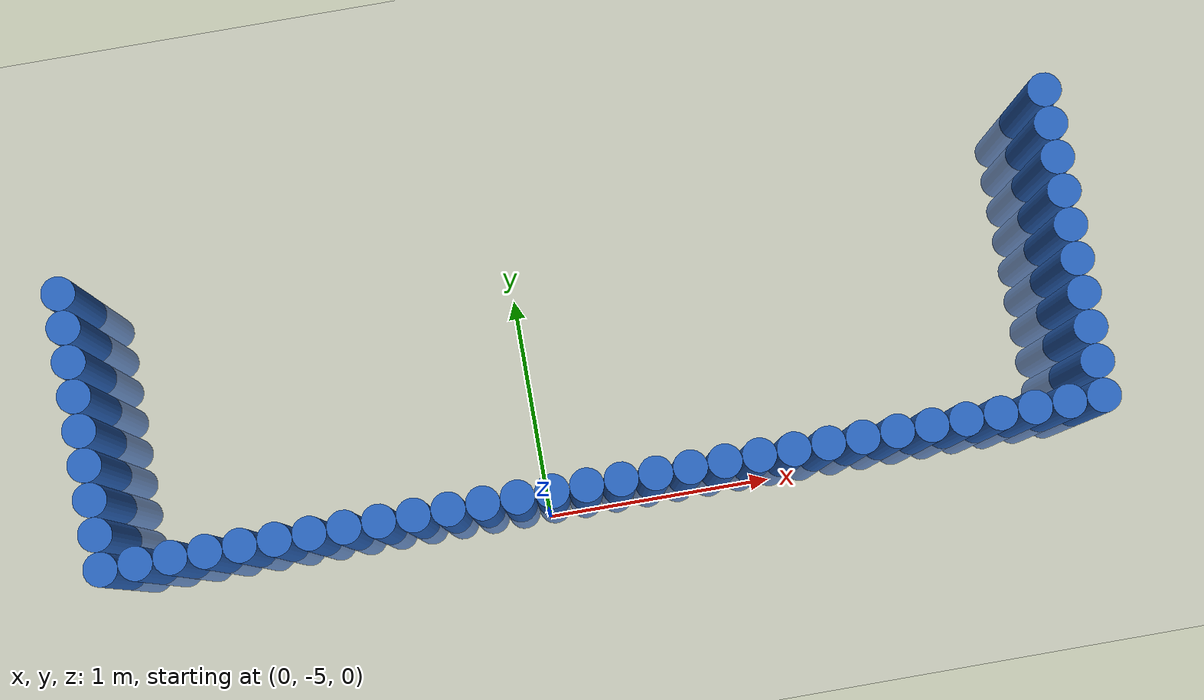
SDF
<sdf version="1.6">
 <world name="default">
  <model name="ground_plane">
   <static>1</static>
   <link name="link">
    <collision name="collision">
     <geometry><plane><normal>0 0 1</normal><size>100 100</size></plane></geometry>
     <surface><friction><ode><mu>100</mu><mu2>50</mu2></ode></friction></surface>
    </collision>
    <visual name="visual">
     <cast_shadows>0</cast_shadows>
     <geometry><plane><normal>0 0 1</normal><size>100 100</size></plane></geometry>
     <material>
      <script><uri>file://media/materials/scripts/gazebo.material</uri><name>Gazebo/Grey</name></script>
     </material>
    </visual>
   </link>
  </model>
  <model name="unit_cylinder_0">
   <static>1</static>
   <pose>2.425000 -4.925000 0.000000 0.000000 0.000000 0.000000</pose>
   <link name="link">
    <inertial>
     <mass>1</mass>
     <inertia><ixx>0.145833</ixx><ixy>0</ixy><ixz>0</ixz><iyy>0.145833</iyy><iyz>0</iyz><izz>0.125</izz></inertia>
    </inertial>
    <collision name="collision">
     <geometry><cylinder><radius>0.075000</radius><length>1.5</length></cylinder></geometry>
    </collision>
    <visual name="visual">
     <geometry><cylinder><radius>0.075000</radius><length>1.5</length></cylinder></geometry>
     <material>
      <ambient>0.152000 0.379000 0.720000 1</ambient>
      <diffuse>0.152000 0.379000 0.720000 1</diffuse>
     </material>
     <material>
      <script><name>Gazebo/Grey</name><uri>file://media/materials/scripts/gazebo.material</uri></script>
     </material>
    </visual>
   </link>
  </model>
  <model name="unit_cylinder_1">
   <static>1</static>
   <pose>2.275000 -4.925000 0.000000 0.000000 0.000000 0.000000</pose>
   <link name="link">
    <inertial>
     <mass>1</mass>
     <inertia><ixx>0.145833</ixx><ixy>0</ixy><ixz>0</ixz><iyy>0.145833</iyy><iyz>0</iyz><izz>0.125</izz></inertia>
    </inertial>
    <collision name="collision">
     <geometry><cylinder><radius>0.075000</radius><length>1.5</length></cylinder></geometry>
    </collision>
    <visual name="visual">
     <geometry><cylinder><radius>0.075000</radius><length>1.5</length></cylinder></geometry>
     <material>
      <ambient>0.152000 0.379000 0.720000 1</ambient>
      <diffuse>0.152000 0.379000 0.720000 1</diffuse>
     </material>
     <material>
      <script><name>Gazebo/Grey</name><uri>file://media/materials/scripts/gazebo.material</uri></script>
     </material>
    </visual>
   </link>
  </model>
  <model name="unit_cylinder_2">
   <static>1</static>
   <pose>2.125000 -4.925000 0.000000 0.000000 0.000000 0.000000</pose>
   <link name="link">
    <inertial>
     <mass>1</mass>
     <inertia><ixx>0.145833</ixx><ixy>0</ixy><ixz>0</ixz><iyy>0.145833</iyy><iyz>0</iyz><izz>0.125</izz></inertia>
    </inertial>
    <collision name="collision">
     <geometry><cylinder><radius>0.075000</radius><length>1.5</length></cylinder></geometry>
    </collision>
    <visual name="visual">
     <geometry><cylinder><radius>0.075000</radius><length>1.5</length></cylinder></geometry>
     <material>
      <ambient>0.152000 0.379000 0.720000 1</ambient>
      <diffuse>0.152000 0.379000 0.720000 1</diffuse>
     </material>
     <material>
      <script><name>Gazebo/Grey</name><uri>file://media/materials/scripts/gazebo.material</uri></script>
     </material>
    </visual>
   </link>
  </model>
  <model name="unit_cylinder_3">
   <static>1</static>
   <pose>1.975000 -4.925000 0.000000 0.000000 0.000000 0.000000</pose>
   <link name="link">
    <inertial>
     <mass>1</mass>
     <inertia><ixx>0.145833</ixx><ixy>0</ixy><ixz>0</ixz><iyy>0.145833</iyy><iyz>0</iyz><izz>0.125</izz></inertia>
    </inertial>
    <collision name="collision">
     <geometry><cylinder><radius>0.075000</radius><length>1.5</length></cylinder></geometry>
    </collision>
    <visual name="visual">
     <geometry><cylinder><radius>0.075000</radius><length>1.5</length></cylinder></geometry>
     <material>
      <ambient>0.152000 0.379000 0.720000 1</ambient>
      <diffuse>0.152000 0.379000 0.720000 1</diffuse>
     </material>
     <material>
      <script><name>Gazebo/Grey</name><uri>file://media/materials/scripts/gazebo.material</uri></script>
     </material>
    </visual>
   </link>
  </model>
  <model name="unit_cylinder_4">
   <static>1</static>
   <pose>1.825000 -4.925000 0.000000 0.000000 0.000000 0.000000</pose>
   <link name="link">
    <inertial>
     <mass>1</mass>
     <inertia><ixx>0.145833</ixx><ixy>0</ixy><ixz>0</ixz><iyy>0.145833</iyy><iyz>0</iyz><izz>0.125</izz></inertia>
    </inertial>
    <collision name="collision">
     <geometry><cylinder><radius>0.075000</radius><length>1.5</length></cylinder></geometry>
    </collision>
    <visual name="visual">
     <geometry><cylinder><radius>0.075000</radius><length>1.5</length></cylinder></geometry>
     <material>
      <ambient>0.152000 0.379000 0.720000 1</ambient>
      <diffuse>0.152000 0.379000 0.720000 1</diffuse>
     </material>
     <material>
      <script><name>Gazebo/Grey</name><uri>file://media/materials/scripts/gazebo.material</uri></script>
     </material>
    </visual>
   </link>
  </model>
  <model name="unit_cylinder_5">
   <static>1</static>
   <pose>1.675000 -4.925000 0.000000 0.000000 0.000000 0.000000</pose>
   <link name="link">
    <inertial>
     <mass>1</mass>
     <inertia><ixx>0.145833</ixx><ixy>0</ixy><ixz>0</ixz><iyy>0.145833</iyy><iyz>0</iyz><izz>0.125</izz></inertia>
    </inertial>
    <collision name="collision">
     <geometry><cylinder><radius>0.075000</radius><length>1.5</length></cylinder></geometry>
    </collision>
    <visual name="visual">
     <geometry><cylinder><radius>0.075000</radius><length>1.5</length></cylinder></geometry>
     <material>
      <ambient>0.152000 0.379000 0.720000 1</ambient>
      <diffuse>0.152000 0.379000 0.720000 1</diffuse>
     </material>
     <material>
      <script><name>Gazebo/Grey</name><uri>file://media/materials/scripts/gazebo.material</uri></script>
     </material>
    </visual>
   </link>
  </model>
  <model name="unit_cylinder_6">
   <static>1</static>
   <pose>1.525000 -4.925000 0.000000 0.000000 0.000000 0.000000</pose>
   <link name="link">
    <inertial>
     <mass>1</mass>
     <inertia><ixx>0.145833</ixx><ixy>0</ixy><ixz>0</ixz><iyy>0.145833</iyy><iyz>0</iyz><izz>0.125</izz></inertia>
    </inertial>
    <collision name="collision">
     <geometry><cylinder><radius>0.075000</radius><length>1.5</length></cylinder></geometry>
    </collision>
    <visual name="visual">
     <geometry><cylinder><radius>0.075000</radius><length>1.5</length></cylinder></geometry>
     <material>
      <ambient>0.152000 0.379000 0.720000 1</ambient>
      <diffuse>0.152000 0.379000 0.720000 1</diffuse>
     </material>
     <material>
      <script><name>Gazebo/Grey</name><uri>file://media/materials/scripts/gazebo.material</uri></script>
     </material>
    </visual>
   </link>
  </model>
  <model name="unit_cylinder_7">
   <static>1</static>
   <pose>1.375000 -4.925000 0.000000 0.000000 0.000000 0.000000</pose>
   <link name="link">
    <inertial>
     <mass>1</mass>
     <inertia><ixx>0.145833</ixx><ixy>0</ixy><ixz>0</ixz><iyy>0.145833</iyy><iyz>0</iyz><izz>0.125</izz></inertia>
    </inertial>
    <collision name="collision">
     <geometry><cylinder><radius>0.075000</radius><length>1.5</length></cylinder></geometry>
    </collision>
    <visual name="visual">
     <geometry><cylinder><radius>0.075000</radius><length>1.5</length></cylinder></geometry>
     <material>
      <ambient>0.152000 0.379000 0.720000 1</ambient>
      <diffuse>0.152000 0.379000 0.720000 1</diffuse>
     </material>
     <material>
      <script><name>Gazebo/Grey</name><uri>file://media/materials/scripts/gazebo.material</uri></script>
     </material>
    </visual>
   </link>
  </model>
  <model name="unit_cylinder_8">
   <static>1</static>
   <pose>1.225000 -4.925000 0.000000 0.000000 0.000000 0.000000</pose>
   <link name="link">
    <inertial>
     <mass>1</mass>
     <inertia><ixx>0.145833</ixx><ixy>0</ixy><ixz>0</ixz><iyy>0.145833</iyy><iyz>0</iyz><izz>0.125</izz></inertia>
    </inertial>
    <collision name="collision">
     <geometry><cylinder><radius>0.075000</radius><length>1.5</length></cylinder></geometry>
    </collision>
    <visual name="visual">
     <geometry><cylinder><radius>0.075000</radius><length>1.5</length></cylinder></geometry>
     <material>
      <ambient>0.152000 0.379000 0.720000 1</ambient>
      <diffuse>0.152000 0.379000 0.720000 1</diffuse>
     </material>
     <material>
      <script><name>Gazebo/Grey</name><uri>file://media/materials/scripts/gazebo.material</uri></script>
     </material>
    </visual>
   </link>
  </model>
  <model name="unit_cylinder_9">
   <static>1</static>
   <pose>1.075000 -4.925000 0.000000 0.000000 0.000000 0.000000</pose>
   <link name="link">
    <inertial>
     <mass>1</mass>
     <inertia><ixx>0.145833</ixx><ixy>0</ixy><ixz>0</ixz><iyy>0.145833</iyy><iyz>0</iyz><izz>0.125</izz></inertia>
    </inertial>
    <collision name="collision">
     <geometry><cylinder><radius>0.075000</radius><length>1.5</length></cylinder></geometry>
    </collision>
    <visual name="visual">
     <geometry><cylinder><radius>0.075000</radius><length>1.5</length></cylinder></geometry>
     <material>
      <ambient>0.152000 0.379000 0.720000 1</ambient>
      <diffuse>0.152000 0.379000 0.720000 1</diffuse>
     </material>
     <material>
      <script><name>Gazebo/Grey</name><uri>file://media/materials/scripts/gazebo.material</uri></script>
     </material>
    </visual>
   </link>
  </model>
  <model name="unit_cylinder_10">
   <static>1</static>
   <pose>0.925000 -4.925000 0.000000 0.000000 0.000000 0.000000</pose>
   <link name="link">
    <inertial>
     <mass>1</mass>
     <inertia><ixx>0.145833</ixx><ixy>0</ixy><ixz>0</ixz><iyy>0.145833</iyy><iyz>0</iyz><izz>0.125</izz></inertia>
    </inertial>
    <collision name="collision">
     <geometry><cylinder><radius>0.075000</radius><length>1.5</length></cylinder></geometry>
    </collision>
    <visual name="visual">
     <geometry><cylinder><radius>0.075000</radius><length>1.5</length></cylinder></geometry>
     <material>
      <ambient>0.152000 0.379000 0.720000 1</ambient>
      <diffuse>0.152000 0.379000 0.720000 1</diffuse>
     </material>
     <material>
      <script><name>Gazebo/Grey</name><uri>file://media/materials/scripts/gazebo.material</uri></script>
     </material>
    </visual>
   </link>
  </model>
  <model name="unit_cylinder_11">
   <static>1</static>
   <pose>0.775000 -4.925000 0.000000 0.000000 0.000000 0.000000</pose>
   <link name="link">
    <inertial>
     <mass>1</mass>
     <inertia><ixx>0.145833</ixx><ixy>0</ixy><ixz>0</ixz><iyy>0.145833</iyy><iyz>0</iyz><izz>0.125</izz></inertia>
    </inertial>
    <collision name="collision">
     <geometry><cylinder><radius>0.075000</radius><length>1.5</length></cylinder></geometry>
    </collision>
    <visual name="visual">
     <geometry><cylinder><radius>0.075000</radius><length>1.5</length></cylinder></geometry>
     <material>
      <ambient>0.152000 0.379000 0.720000 1</ambient>
      <diffuse>0.152000 0.379000 0.720000 1</diffuse>
     </material>
     <material>
      <script><name>Gazebo/Grey</name><uri>file://media/materials/scripts/gazebo.material</uri></script>
     </material>
    </visual>
   </link>
  </model>
  <model name="unit_cylinder_12">
   <static>1</static>
   <pose>0.625000 -4.925000 0.000000 0.000000 0.000000 0.000000</pose>
   <link name="link">
    <inertial>
     <mass>1</mass>
     <inertia><ixx>0.145833</ixx><ixy>0</ixy><ixz>0</ixz><iyy>0.145833</iyy><iyz>0</iyz><izz>0.125</izz></inertia>
    </inertial>
    <collision name="collision">
     <geometry><cylinder><radius>0.075000</radius><length>1.5</length></cylinder></geometry>
    </collision>
    <visual name="visual">
     <geometry><cylinder><radius>0.075000</radius><length>1.5</length></cylinder></geometry>
     <material>
      <ambient>0.152000 0.379000 0.720000 1</ambient>
      <diffuse>0.152000 0.379000 0.720000 1</diffuse>
     </material>
     <material>
      <script><name>Gazebo/Grey</name><uri>file://media/materials/scripts/gazebo.material</uri></script>
     </material>
    </visual>
   </link>
  </model>
  <model name="unit_cylinder_13">
   <static>1</static>
   <pose>0.475000 -4.925000 0.000000 0.000000 0.000000 0.000000</pose>
   <link name="link">
    <inertial>
     <mass>1</mass>
     <inertia><ixx>0.145833</ixx><ixy>0</ixy><ixz>0</ixz><iyy>0.145833</iyy><iyz>0</iyz><izz>0.125</izz></inertia>
    </inertial>
    <collision name="collision">
     <geometry><cylinder><radius>0.075000</radius><length>1.5</length></cylinder></geometry>
    </collision>
    <visual name="visual">
     <geometry><cylinder><radius>0.075000</radius><length>1.5</length></cylinder></geometry>
     <material>
      <ambient>0.152000 0.379000 0.720000 1</ambient>
      <diffuse>0.152000 0.379000 0.720000 1</diffuse>
     </material>
     <material>
      <script><name>Gazebo/Grey</name><uri>file://media/materials/scripts/gazebo.material</uri></script>
     </material>
    </visual>
   </link>
  </model>
  <model name="unit_cylinder_14">
   <static>1</static>
   <pose>0.325000 -4.925000 0.000000 0.000000 0.000000 0.000000</pose>
   <link name="link">
    <inertial>
     <mass>1</mass>
     <inertia><ixx>0.145833</ixx><ixy>0</ixy><ixz>0</ixz><iyy>0.145833</iyy><iyz>0</iyz><izz>0.125</izz></inertia>
    </inertial>
    <collision name="collision">
     <geometry><cylinder><radius>0.075000</radius><length>1.5</length></cylinder></geometry>
    </collision>
    <visual name="visual">
     <geometry><cylinder><radius>0.075000</radius><length>1.5</length></cylinder></geometry>
     <material>
      <ambient>0.152000 0.379000 0.720000 1</ambient>
      <diffuse>0.152000 0.379000 0.720000 1</diffuse>
     </material>
     <material>
      <script><name>Gazebo/Grey</name><uri>file://media/materials/scripts/gazebo.material</uri></script>
     </material>
    </visual>
   </link>
  </model>
  <model name="unit_cylinder_15">
   <static>1</static>
   <pose>0.175000 -4.925000 0.000000 0.000000 0.000000 0.000000</pose>
   <link name="link">
    <inertial>
     <mass>1</mass>
     <inertia><ixx>0.145833</ixx><ixy>0</ixy><ixz>0</ixz><iyy>0.145833</iyy><iyz>0</iyz><izz>0.125</izz></inertia>
    </inertial>
    <collision name="collision">
     <geometry><cylinder><radius>0.075000</radius><length>1.5</length></cylinder></geometry>
    </collision>
    <visual name="visual">
     <geometry><cylinder><radius>0.075000</radius><length>1.5</length></cylinder></geometry>
     <material>
      <ambient>0.152000 0.379000 0.720000 1</ambient>
      <diffuse>0.152000 0.379000 0.720000 1</diffuse>
     </material>
     <material>
      <script><name>Gazebo/Grey</name><uri>file://media/materials/scripts/gazebo.material</uri></script>
     </material>
    </visual>
   </link>
  </model>
  <model name="unit_cylinder_16">
   <static>1</static>
   <pose>0.025000 -4.925000 0.000000 0.000000 0.000000 0.000000</pose>
   <link name="link">
    <inertial>
     <mass>1</mass>
     <inertia><ixx>0.145833</ixx><ixy>0</ixy><ixz>0</ixz><iyy>0.145833</iyy><iyz>0</iyz><izz>0.125</izz></inertia>
    </inertial>
    <collision name="collision">
     <geometry><cylinder><radius>0.075000</radius><length>1.5</length></cylinder></geometry>
    </collision>
    <visual name="visual">
     <geometry><cylinder><radius>0.075000</radius><length>1.5</length></cylinder></geometry>
     <material>
      <ambient>0.152000 0.379000 0.720000 1</ambient>
      <diffuse>0.152000 0.379000 0.720000 1</diffuse>
     </material>
     <material>
      <script><name>Gazebo/Grey</name><uri>file://media/materials/scripts/gazebo.material</uri></script>
     </material>
    </visual>
   </link>
  </model>
  <model name="unit_cylinder_17">
   <static>1</static>
   <pose>-0.125000 -4.925000 0.000000 0.000000 0.000000 0.000000</pose>
   <link name="link">
    <inertial>
     <mass>1</mass>
     <inertia><ixx>0.145833</ixx><ixy>0</ixy><ixz>0</ixz><iyy>0.145833</iyy><iyz>0</iyz><izz>0.125</izz></inertia>
    </inertial>
    <collision name="collision">
     <geometry><cylinder><radius>0.075000</radius><length>1.5</length></cylinder></geometry>
    </collision>
    <visual name="visual">
     <geometry><cylinder><radius>0.075000</radius><length>1.5</length></cylinder></geometry>
     <material>
      <ambient>0.152000 0.379000 0.720000 1</ambient>
      <diffuse>0.152000 0.379000 0.720000 1</diffuse>
     </material>
     <material>
      <script><name>Gazebo/Grey</name><uri>file://media/materials/scripts/gazebo.material</uri></script>
     </material>
    </visual>
   </link>
  </model>
  <model name="unit_cylinder_18">
   <static>1</static>
   <pose>-0.275000 -4.925000 0.000000 0.000000 0.000000 0.000000</pose>
   <link name="link">
    <inertial>
     <mass>1</mass>
     <inertia><ixx>0.145833</ixx><ixy>0</ixy><ixz>0</ixz><iyy>0.145833</iyy><iyz>0</iyz><izz>0.125</izz></inertia>
    </inertial>
    <collision name="collision">
     <geometry><cylinder><radius>0.075000</radius><length>1.5</length></cylinder></geometry>
    </collision>
    <visual name="visual">
     <geometry><cylinder><radius>0.075000</radius><length>1.5</length></cylinder></geometry>
     <material>
      <ambient>0.152000 0.379000 0.720000 1</ambient>
      <diffuse>0.152000 0.379000 0.720000 1</diffuse>
     </material>
     <material>
      <script><name>Gazebo/Grey</name><uri>file://media/materials/scripts/gazebo.material</uri></script>
     </material>
    </visual>
   </link>
  </model>
  <model name="unit_cylinder_19">
   <static>1</static>
   <pose>-0.425000 -4.925000 0.000000 0.000000 0.000000 0.000000</pose>
   <link name="link">
    <inertial>
     <mass>1</mass>
     <inertia><ixx>0.145833</ixx><ixy>0</ixy><ixz>0</ixz><iyy>0.145833</iyy><iyz>0</iyz><izz>0.125</izz></inertia>
    </inertial>
    <collision name="collision">
     <geometry><cylinder><radius>0.075000</radius><length>1.5</length></cylinder></geometry>
    </collision>
    <visual name="visual">
     <geometry><cylinder><radius>0.075000</radius><length>1.5</length></cylinder></geometry>
     <material>
      <ambient>0.152000 0.379000 0.720000 1</ambient>
      <diffuse>0.152000 0.379000 0.720000 1</diffuse>
     </material>
     <material>
      <script><name>Gazebo/Grey</name><uri>file://media/materials/scripts/gazebo.material</uri></script>
     </material>
    </visual>
   </link>
  </model>
  <model name="unit_cylinder_20">
   <static>1</static>
   <pose>-0.575000 -4.925000 0.000000 0.000000 0.000000 0.000000</pose>
   <link name="link">
    <inertial>
     <mass>1</mass>
     <inertia><ixx>0.145833</ixx><ixy>0</ixy><ixz>0</ixz><iyy>0.145833</iyy><iyz>0</iyz><izz>0.125</izz></inertia>
    </inertial>
    <collision name="collision">
     <geometry><cylinder><radius>0.075000</radius><length>1.5</length></cylinder></geometry>
    </collision>
    <visual name="visual">
     <geometry><cylinder><radius>0.075000</radius><length>1.5</length></cylinder></geometry>
     <material>
      <ambient>0.152000 0.379000 0.720000 1</ambient>
      <diffuse>0.152000 0.379000 0.720000 1</diffuse>
     </material>
     <material>
      <script><name>Gazebo/Grey</name><uri>file://media/materials/scripts/gazebo.material</uri></script>
     </material>
    </visual>
   </link>
  </model>
  <model name="unit_cylinder_21">
   <static>1</static>
   <pose>-0.725000 -4.925000 0.000000 0.000000 0.000000 0.000000</pose>
   <link name="link">
    <inertial>
     <mass>1</mass>
     <inertia><ixx>0.145833</ixx><ixy>0</ixy><ixz>0</ixz><iyy>0.145833</iyy><iyz>0</iyz><izz>0.125</izz></inertia>
    </inertial>
    <collision name="collision">
     <geometry><cylinder><radius>0.075000</radius><length>1.5</length></cylinder></geometry>
    </collision>
    <visual name="visual">
     <geometry><cylinder><radius>0.075000</radius><length>1.5</length></cylinder></geometry>
     <material>
      <ambient>0.152000 0.379000 0.720000 1</ambient>
      <diffuse>0.152000 0.379000 0.720000 1</diffuse>
     </material>
     <material>
      <script><name>Gazebo/Grey</name><uri>file://media/materials/scripts/gazebo.material</uri></script>
     </material>
    </visual>
   </link>
  </model>
  <model name="unit_cylinder_22">
   <static>1</static>
   <pose>-0.875000 -4.925000 0.000000 0.000000 0.000000 0.000000</pose>
   <link name="link">
    <inertial>
     <mass>1</mass>
     <inertia><ixx>0.145833</ixx><ixy>0</ixy><ixz>0</ixz><iyy>0.145833</iyy><iyz>0</iyz><izz>0.125</izz></inertia>
    </inertial>
    <collision name="collision">
     <geometry><cylinder><radius>0.075000</radius><length>1.5</length></cylinder></geometry>
    </collision>
    <visual name="visual">
     <geometry><cylinder><radius>0.075000</radius><length>1.5</length></cylinder></geometry>
     <material>
      <ambient>0.152000 0.379000 0.720000 1</ambient>
      <diffuse>0.152000 0.379000 0.720000 1</diffuse>
     </material>
     <material>
      <script><name>Gazebo/Grey</name><uri>file://media/materials/scripts/gazebo.material</uri></script>
     </material>
    </visual>
   </link>
  </model>
  <model name="unit_cylinder_23">
   <static>1</static>
   <pose>-1.025000 -4.925000 0.000000 0.000000 0.000000 0.000000</pose>
   <link name="link">
    <inertial>
     <mass>1</mass>
     <inertia><ixx>0.145833</ixx><ixy>0</ixy><ixz>0</ixz><iyy>0.145833</iyy><iyz>0</iyz><izz>0.125</izz></inertia>
    </inertial>
    <collision name="collision">
     <geometry><cylinder><radius>0.075000</radius><length>1.5</length></cylinder></geometry>
    </collision>
    <visual name="visual">
     <geometry><cylinder><radius>0.075000</radius><length>1.5</length></cylinder></geometry>
     <material>
      <ambient>0.152000 0.379000 0.720000 1</ambient>
      <diffuse>0.152000 0.379000 0.720000 1</diffuse>
     </material>
     <material>
      <script><name>Gazebo/Grey</name><uri>file://media/materials/scripts/gazebo.material</uri></script>
     </material>
    </visual>
   </link>
  </model>
  <model name="unit_cylinder_24">
   <static>1</static>
   <pose>-1.175000 -4.925000 0.000000 0.000000 0.000000 0.000000</pose>
   <link name="link">
    <inertial>
     <mass>1</mass>
     <inertia><ixx>0.145833</ixx><ixy>0</ixy><ixz>0</ixz><iyy>0.145833</iyy><iyz>0</iyz><izz>0.125</izz></inertia>
    </inertial>
    <collision name="collision">
     <geometry><cylinder><radius>0.075000</radius><length>1.5</length></cylinder></geometry>
    </collision>
    <visual name="visual">
     <geometry><cylinder><radius>0.075000</radius><length>1.5</length></cylinder></geometry>
     <material>
      <ambient>0.152000 0.379000 0.720000 1</ambient>
      <diffuse>0.152000 0.379000 0.720000 1</diffuse>
     </material>
     <material>
      <script><name>Gazebo/Grey</name><uri>file://media/materials/scripts/gazebo.material</uri></script>
     </material>
    </visual>
   </link>
  </model>
  <model name="unit_cylinder_25">
   <static>1</static>
   <pose>-1.325000 -4.925000 0.000000 0.000000 0.000000 0.000000</pose>
   <link name="link">
    <inertial>
     <mass>1</mass>
     <inertia><ixx>0.145833</ixx><ixy>0</ixy><ixz>0</ixz><iyy>0.145833</iyy><iyz>0</iyz><izz>0.125</izz></inertia>
    </inertial>
    <collision name="collision">
     <geometry><cylinder><radius>0.075000</radius><length>1.5</length></cylinder></geometry>
    </collision>
    <visual name="visual">
     <geometry><cylinder><radius>0.075000</radius><length>1.5</length></cylinder></geometry>
     <material>
      <ambient>0.152000 0.379000 0.720000 1</ambient>
      <diffuse>0.152000 0.379000 0.720000 1</diffuse>
     </material>
     <material>
      <script><name>Gazebo/Grey</name><uri>file://media/materials/scripts/gazebo.material</uri></script>
     </material>
    </visual>
   </link>
  </model>
  <model name="unit_cylinder_26">
   <static>1</static>
   <pose>-1.475000 -4.925000 0.000000 0.000000 0.000000 0.000000</pose>
   <link name="link">
    <inertial>
     <mass>1</mass>
     <inertia><ixx>0.145833</ixx><ixy>0</ixy><ixz>0</ixz><iyy>0.145833</iyy><iyz>0</iyz><izz>0.125</izz></inertia>
    </inertial>
    <collision name="collision">
     <geometry><cylinder><radius>0.075000</radius><length>1.5</length></cylinder></geometry>
    </collision>
    <visual name="visual">
     <geometry><cylinder><radius>0.075000</radius><length>1.5</length></cylinder></geometry>
     <material>
      <ambient>0.152000 0.379000 0.720000 1</ambient>
      <diffuse>0.152000 0.379000 0.720000 1</diffuse>
     </material>
     <material>
      <script><name>Gazebo/Grey</name><uri>file://media/materials/scripts/gazebo.material</uri></script>
     </material>
    </visual>
   </link>
  </model>
  <model name="unit_cylinder_27">
   <static>1</static>
   <pose>-1.625000 -4.925000 0.000000 0.000000 0.000000 0.000000</pose>
   <link name="link">
    <inertial>
     <mass>1</mass>
     <inertia><ixx>0.145833</ixx><ixy>0</ixy><ixz>0</ixz><iyy>0.145833</iyy><iyz>0</iyz><izz>0.125</izz></inertia>
    </inertial>
    <collision name="collision">
     <geometry><cylinder><radius>0.075000</radius><length>1.5</length></cylinder></geometry>
    </collision>
    <visual name="visual">
     <geometry><cylinder><radius>0.075000</radius><length>1.5</length></cylinder></geometry>
     <material>
      <ambient>0.152000 0.379000 0.720000 1</ambient>
      <diffuse>0.152000 0.379000 0.720000 1</diffuse>
     </material>
     <material>
      <script><name>Gazebo/Grey</name><uri>file://media/materials/scripts/gazebo.material</uri></script>
     </material>
    </visual>
   </link>
  </model>
  <model name="unit_cylinder_28">
   <static>1</static>
   <pose>-1.775000 -4.925000 0.000000 0.000000 0.000000 0.000000</pose>
   <link name="link">
    <inertial>
     <mass>1</mass>
     <inertia><ixx>0.145833</ixx><ixy>0</ixy><ixz>0</ixz><iyy>0.145833</iyy><iyz>0</iyz><izz>0.125</izz></inertia>
    </inertial>
    <collision name="collision">
     <geometry><cylinder><radius>0.075000</radius><length>1.5</length></cylinder></geometry>
    </collision>
    <visual name="visual">
     <geometry><cylinder><radius>0.075000</radius><length>1.5</length></cylinder></geometry>
     <material>
      <ambient>0.152000 0.379000 0.720000 1</ambient>
      <diffuse>0.152000 0.379000 0.720000 1</diffuse>
     </material>
     <material>
      <script><name>Gazebo/Grey</name><uri>file://media/materials/scripts/gazebo.material</uri></script>
     </material>
    </visual>
   </link>
  </model>
  <model name="unit_cylinder_29">
   <static>1</static>
   <pose>-1.925000 -4.925000 0.000000 0.000000 0.000000 0.000000</pose>
   <link name="link">
    <inertial>
     <mass>1</mass>
     <inertia><ixx>0.145833</ixx><ixy>0</ixy><ixz>0</ixz><iyy>0.145833</iyy><iyz>0</iyz><izz>0.125</izz></inertia>
    </inertial>
    <collision name="collision">
     <geometry><cylinder><radius>0.075000</radius><length>1.5</length></cylinder></geometry>
    </collision>
    <visual name="visual">
     <geometry><cylinder><radius>0.075000</radius><length>1.5</length></cylinder></geometry>
     <material>
      <ambient>0.152000 0.379000 0.720000 1</ambient>
      <diffuse>0.152000 0.379000 0.720000 1</diffuse>
     </material>
     <material>
      <script><name>Gazebo/Grey</name><uri>file://media/materials/scripts/gazebo.material</uri></script>
     </material>
    </visual>
   </link>
  </model>
  <model name="unit_cylinder_30">
   <static>1</static>
   <pose>2.425000 -4.775000 0.000000 0.000000 0.000000 0.000000</pose>
   <link name="link">
    <inertial>
     <mass>1</mass>
     <inertia><ixx>0.145833</ixx><ixy>0</ixy><ixz>0</ixz><iyy>0.145833</iyy><iyz>0</iyz><izz>0.125</izz></inertia>
    </inertial>
    <collision name="collision">
     <geometry><cylinder><radius>0.075000</radius><length>1.5</length></cylinder></geometry>
    </collision>
    <visual name="visual">
     <geometry><cylinder><radius>0.075000</radius><length>1.5</length></cylinder></geometry>
     <material>
      <ambient>0.152000 0.379000 0.720000 1</ambient>
      <diffuse>0.152000 0.379000 0.720000 1</diffuse>
     </material>
     <material>
      <script><name>Gazebo/Grey</name><uri>file://media/materials/scripts/gazebo.material</uri></script>
     </material>
    </visual>
   </link>
  </model>
  <model name="unit_cylinder_31">
   <static>1</static>
   <pose>-1.925000 -4.775000 0.000000 0.000000 0.000000 0.000000</pose>
   <link name="link">
    <inertial>
     <mass>1</mass>
     <inertia><ixx>0.145833</ixx><ixy>0</ixy><ixz>0</ixz><iyy>0.145833</iyy><iyz>0</iyz><izz>0.125</izz></inertia>
    </inertial>
    <collision name="collision">
     <geometry><cylinder><radius>0.075000</radius><length>1.5</length></cylinder></geometry>
    </collision>
    <visual name="visual">
     <geometry><cylinder><radius>0.075000</radius><length>1.5</length></cylinder></geometry>
     <material>
      <ambient>0.152000 0.379000 0.720000 1</ambient>
      <diffuse>0.152000 0.379000 0.720000 1</diffuse>
     </material>
     <material>
      <script><name>Gazebo/Grey</name><uri>file://media/materials/scripts/gazebo.material</uri></script>
     </material>
    </visual>
   </link>
  </model>
  <model name="unit_cylinder_32">
   <static>1</static>
   <pose>2.425000 -4.625000 0.000000 0.000000 0.000000 0.000000</pose>
   <link name="link">
    <inertial>
     <mass>1</mass>
     <inertia><ixx>0.145833</ixx><ixy>0</ixy><ixz>0</ixz><iyy>0.145833</iyy><iyz>0</iyz><izz>0.125</izz></inertia>
    </inertial>
    <collision name="collision">
     <geometry><cylinder><radius>0.075000</radius><length>1.5</length></cylinder></geometry>
    </collision>
    <visual name="visual">
     <geometry><cylinder><radius>0.075000</radius><length>1.5</length></cylinder></geometry>
     <material>
      <ambient>0.152000 0.379000 0.720000 1</ambient>
      <diffuse>0.152000 0.379000 0.720000 1</diffuse>
     </material>
     <material>
      <script><name>Gazebo/Grey</name><uri>file://media/materials/scripts/gazebo.material</uri></script>
     </material>
    </visual>
   </link>
  </model>
  <model name="unit_cylinder_33">
   <static>1</static>
   <pose>-1.925000 -4.625000 0.000000 0.000000 0.000000 0.000000</pose>
   <link name="link">
    <inertial>
     <mass>1</mass>
     <inertia><ixx>0.145833</ixx><ixy>0</ixy><ixz>0</ixz><iyy>0.145833</iyy><iyz>0</iyz><izz>0.125</izz></inertia>
    </inertial>
    <collision name="collision">
     <geometry><cylinder><radius>0.075000</radius><length>1.5</length></cylinder></geometry>
    </collision>
    <visual name="visual">
     <geometry><cylinder><radius>0.075000</radius><length>1.5</length></cylinder></geometry>
     <material>
      <ambient>0.152000 0.379000 0.720000 1</ambient>
      <diffuse>0.152000 0.379000 0.720000 1</diffuse>
     </material>
     <material>
      <script><name>Gazebo/Grey</name><uri>file://media/materials/scripts/gazebo.material</uri></script>
     </material>
    </visual>
   </link>
  </model>
  <model name="unit_cylinder_34">
   <static>1</static>
   <pose>2.425000 -4.475000 0.000000 0.000000 0.000000 0.000000</pose>
   <link name="link">
    <inertial>
     <mass>1</mass>
     <inertia><ixx>0.145833</ixx><ixy>0</ixy><ixz>0</ixz><iyy>0.145833</iyy><iyz>0</iyz><izz>0.125</izz></inertia>
    </inertial>
    <collision name="collision">
     <geometry><cylinder><radius>0.075000</radius><length>1.5</length></cylinder></geometry>
    </collision>
    <visual name="visual">
     <geometry><cylinder><radius>0.075000</radius><length>1.5</length></cylinder></geometry>
     <material>
      <ambient>0.152000 0.379000 0.720000 1</ambient>
      <diffuse>0.152000 0.379000 0.720000 1</diffuse>
     </material>
     <material>
      <script><name>Gazebo/Grey</name><uri>file://media/materials/scripts/gazebo.material</uri></script>
     </material>
    </visual>
   </link>
  </model>
  <model name="unit_cylinder_35">
   <static>1</static>
   <pose>-1.925000 -4.475000 0.000000 0.000000 0.000000 0.000000</pose>
   <link name="link">
    <inertial>
     <mass>1</mass>
     <inertia><ixx>0.145833</ixx><ixy>0</ixy><ixz>0</ixz><iyy>0.145833</iyy><iyz>0</iyz><izz>0.125</izz></inertia>
    </inertial>
    <collision name="collision">
     <geometry><cylinder><radius>0.075000</radius><length>1.5</length></cylinder></geometry>
    </collision>
    <visual name="visual">
     <geometry><cylinder><radius>0.075000</radius><length>1.5</length></cylinder></geometry>
     <material>
      <ambient>0.152000 0.379000 0.720000 1</ambient>
      <diffuse>0.152000 0.379000 0.720000 1</diffuse>
     </material>
     <material>
      <script><name>Gazebo/Grey</name><uri>file://media/materials/scripts/gazebo.material</uri></script>
     </material>
    </visual>
   </link>
  </model>
  <model name="unit_cylinder_36">
   <static>1</static>
   <pose>2.425000 -4.325000 0.000000 0.000000 0.000000 0.000000</pose>
   <link name="link">
    <inertial>
     <mass>1</mass>
     <inertia><ixx>0.145833</ixx><ixy>0</ixy><ixz>0</ixz><iyy>0.145833</iyy><iyz>0</iyz><izz>0.125</izz></inertia>
    </inertial>
    <collision name="collision">
     <geometry><cylinder><radius>0.075000</radius><length>1.5</length></cylinder></geometry>
    </collision>
    <visual name="visual">
     <geometry><cylinder><radius>0.075000</radius><length>1.5</length></cylinder></geometry>
     <material>
      <ambient>0.152000 0.379000 0.720000 1</ambient>
      <diffuse>0.152000 0.379000 0.720000 1</diffuse>
     </material>
     <material>
      <script><name>Gazebo/Grey</name><uri>file://media/materials/scripts/gazebo.material</uri></script>
     </material>
    </visual>
   </link>
  </model>
  <model name="unit_cylinder_37">
   <static>1</static>
   <pose>-1.925000 -4.325000 0.000000 0.000000 0.000000 0.000000</pose>
   <link name="link">
    <inertial>
     <mass>1</mass>
     <inertia><ixx>0.145833</ixx><ixy>0</ixy><ixz>0</ixz><iyy>0.145833</iyy><iyz>0</iyz><izz>0.125</izz></inertia>
    </inertial>
    <collision name="collision">
     <geometry><cylinder><radius>0.075000</radius><length>1.5</length></cylinder></geometry>
    </collision>
    <visual name="visual">
     <geometry><cylinder><radius>0.075000</radius><length>1.5</length></cylinder></geometry>
     <material>
      <ambient>0.152000 0.379000 0.720000 1</ambient>
      <diffuse>0.152000 0.379000 0.720000 1</diffuse>
     </material>
     <material>
      <script><name>Gazebo/Grey</name><uri>file://media/materials/scripts/gazebo.material</uri></script>
     </material>
    </visual>
   </link>
  </model>
  <model name="unit_cylinder_38">
   <static>1</static>
   <pose>2.425000 -4.175000 0.000000 0.000000 0.000000 0.000000</pose>
   <link name="link">
    <inertial>
     <mass>1</mass>
     <inertia><ixx>0.145833</ixx><ixy>0</ixy><ixz>0</ixz><iyy>0.145833</iyy><iyz>0</iyz><izz>0.125</izz></inertia>
    </inertial>
    <collision name="collision">
     <geometry><cylinder><radius>0.075000</radius><length>1.5</length></cylinder></geometry>
    </collision>
    <visual name="visual">
     <geometry><cylinder><radius>0.075000</radius><length>1.5</length></cylinder></geometry>
     <material>
      <ambient>0.152000 0.379000 0.720000 1</ambient>
      <diffuse>0.152000 0.379000 0.720000 1</diffuse>
     </material>
     <material>
      <script><name>Gazebo/Grey</name><uri>file://media/materials/scripts/gazebo.material</uri></script>
     </material>
    </visual>
   </link>
  </model>
  <model name="unit_cylinder_39">
   <static>1</static>
   <pose>-1.925000 -4.175000 0.000000 0.000000 0.000000 0.000000</pose>
   <link name="link">
    <inertial>
     <mass>1</mass>
     <inertia><ixx>0.145833</ixx><ixy>0</ixy><ixz>0</ixz><iyy>0.145833</iyy><iyz>0</iyz><izz>0.125</izz></inertia>
    </inertial>
    <collision name="collision">
     <geometry><cylinder><radius>0.075000</radius><length>1.5</length></cylinder></geometry>
    </collision>
    <visual name="visual">
     <geometry><cylinder><radius>0.075000</radius><length>1.5</length></cylinder></geometry>
     <material>
      <ambient>0.152000 0.379000 0.720000 1</ambient>
      <diffuse>0.152000 0.379000 0.720000 1</diffuse>
     </material>
     <material>
      <script><name>Gazebo/Grey</name><uri>file://media/materials/scripts/gazebo.material</uri></script>
     </material>
    </visual>
   </link>
  </model>
  <model name="unit_cylinder_40">
   <static>1</static>
   <pose>2.425000 -4.025000 0.000000 0.000000 0.000000 0.000000</pose>
   <link name="link">
    <inertial>
     <mass>1</mass>
     <inertia><ixx>0.145833</ixx><ixy>0</ixy><ixz>0</ixz><iyy>0.145833</iyy><iyz>0</iyz><izz>0.125</izz></inertia>
    </inertial>
    <collision name="collision">
     <geometry><cylinder><radius>0.075000</radius><length>1.5</length></cylinder></geometry>
    </collision>
    <visual name="visual">
     <geometry><cylinder><radius>0.075000</radius><length>1.5</length></cylinder></geometry>
     <material>
      <ambient>0.152000 0.379000 0.720000 1</ambient>
      <diffuse>0.152000 0.379000 0.720000 1</diffuse>
     </material>
     <material>
      <script><name>Gazebo/Grey</name><uri>file://media/materials/scripts/gazebo.material</uri></script>
     </material>
    </visual>
   </link>
  </model>
  <model name="unit_cylinder_41">
   <static>1</static>
   <pose>-1.925000 -4.025000 0.000000 0.000000 0.000000 0.000000</pose>
   <link name="link">
    <inertial>
     <mass>1</mass>
     <inertia><ixx>0.145833</ixx><ixy>0</ixy><ixz>0</ixz><iyy>0.145833</iyy><iyz>0</iyz><izz>0.125</izz></inertia>
    </inertial>
    <collision name="collision">
     <geometry><cylinder><radius>0.075000</radius><length>1.5</length></cylinder></geometry>
    </collision>
    <visual name="visual">
     <geometry><cylinder><radius>0.075000</radius><length>1.5</length></cylinder></geometry>
     <material>
      <ambient>0.152000 0.379000 0.720000 1</ambient>
      <diffuse>0.152000 0.379000 0.720000 1</diffuse>
     </material>
     <material>
      <script><name>Gazebo/Grey</name><uri>file://media/materials/scripts/gazebo.material</uri></script>
     </material>
    </visual>
   </link>
  </model>
  <model name="unit_cylinder_42">
   <static>1</static>
   <pose>2.425000 -3.875000 0.000000 0.000000 0.000000 0.000000</pose>
   <link name="link">
    <inertial>
     <mass>1</mass>
     <inertia><ixx>0.145833</ixx><ixy>0</ixy><ixz>0</ixz><iyy>0.145833</iyy><iyz>0</iyz><izz>0.125</izz></inertia>
    </inertial>
    <collision name="collision">
     <geometry><cylinder><radius>0.075000</radius><length>1.5</length></cylinder></geometry>
    </collision>
    <visual name="visual">
     <geometry><cylinder><radius>0.075000</radius><length>1.5</length></cylinder></geometry>
     <material>
      <ambient>0.152000 0.379000 0.720000 1</ambient>
      <diffuse>0.152000 0.379000 0.720000 1</diffuse>
     </material>
     <material>
      <script><name>Gazebo/Grey</name><uri>file://media/materials/scripts/gazebo.material</uri></script>
     </material>
    </visual>
   </link>
  </model>
  <model name="unit_cylinder_43">
   <static>1</static>
   <pose>-1.925000 -3.875000 0.000000 0.000000 0.000000 0.000000</pose>
   <link name="link">
    <inertial>
     <mass>1</mass>
     <inertia><ixx>0.145833</ixx><ixy>0</ixy><ixz>0</ixz><iyy>0.145833</iyy><iyz>0</iyz><izz>0.125</izz></inertia>
    </inertial>
    <collision name="collision">
     <geometry><cylinder><radius>0.075000</radius><length>1.5</length></cylinder></geometry>
    </collision>
    <visual name="visual">
     <geometry><cylinder><radius>0.075000</radius><length>1.5</length></cylinder></geometry>
     <material>
      <ambient>0.152000 0.379000 0.720000 1</ambient>
      <diffuse>0.152000 0.379000 0.720000 1</diffuse>
     </material>
     <material>
      <script><name>Gazebo/Grey</name><uri>file://media/materials/scripts/gazebo.material</uri></script>
     </material>
    </visual>
   </link>
  </model>
  <model name="unit_cylinder_44">
   <static>1</static>
   <pose>2.425000 -3.725000 0.000000 0.000000 0.000000 0.000000</pose>
   <link name="link">
    <inertial>
     <mass>1</mass>
     <inertia><ixx>0.145833</ixx><ixy>0</ixy><ixz>0</ixz><iyy>0.145833</iyy><iyz>0</iyz><izz>0.125</izz></inertia>
    </inertial>
    <collision name="collision">
     <geometry><cylinder><radius>0.075000</radius><length>1.5</length></cylinder></geometry>
    </collision>
    <visual name="visual">
     <geometry><cylinder><radius>0.075000</radius><length>1.5</length></cylinder></geometry>
     <material>
      <ambient>0.152000 0.379000 0.720000 1</ambient>
      <diffuse>0.152000 0.379000 0.720000 1</diffuse>
     </material>
     <material>
      <script><name>Gazebo/Grey</name><uri>file://media/materials/scripts/gazebo.material</uri></script>
     </material>
    </visual>
   </link>
  </model>
  <model name="unit_cylinder_45">
   <static>1</static>
   <pose>-1.925000 -3.725000 0.000000 0.000000 0.000000 0.000000</pose>
   <link name="link">
    <inertial>
     <mass>1</mass>
     <inertia><ixx>0.145833</ixx><ixy>0</ixy><ixz>0</ixz><iyy>0.145833</iyy><iyz>0</iyz><izz>0.125</izz></inertia>
    </inertial>
    <collision name="collision">
     <geometry><cylinder><radius>0.075000</radius><length>1.5</length></cylinder></geometry>
    </collision>
    <visual name="visual">
     <geometry><cylinder><radius>0.075000</radius><length>1.5</length></cylinder></geometry>
     <material>
      <ambient>0.152000 0.379000 0.720000 1</ambient>
      <diffuse>0.152000 0.379000 0.720000 1</diffuse>
     </material>
     <material>
      <script><name>Gazebo/Grey</name><uri>file://media/materials/scripts/gazebo.material</uri></script>
     </material>
    </visual>
   </link>
  </model>
  <model name="unit_cylinder_46">
   <static>1</static>
   <pose>2.425000 -3.575000 0.000000 0.000000 0.000000 0.000000</pose>
   <link name="link">
    <inertial>
     <mass>1</mass>
     <inertia><ixx>0.145833</ixx><ixy>0</ixy><ixz>0</ixz><iyy>0.145833</iyy><iyz>0</iyz><izz>0.125</izz></inertia>
    </inertial>
    <collision name="collision">
     <geometry><cylinder><radius>0.075000</radius><length>1.5</length></cylinder></geometry>
    </collision>
    <visual name="visual">
     <geometry><cylinder><radius>0.075000</radius><length>1.5</length></cylinder></geometry>
     <material>
      <ambient>0.152000 0.379000 0.720000 1</ambient>
      <diffuse>0.152000 0.379000 0.720000 1</diffuse>
     </material>
     <material>
      <script><name>Gazebo/Grey</name><uri>file://media/materials/scripts/gazebo.material</uri></script>
     </material>
    </visual>
   </link>
  </model>
 </world>
</sdf>
